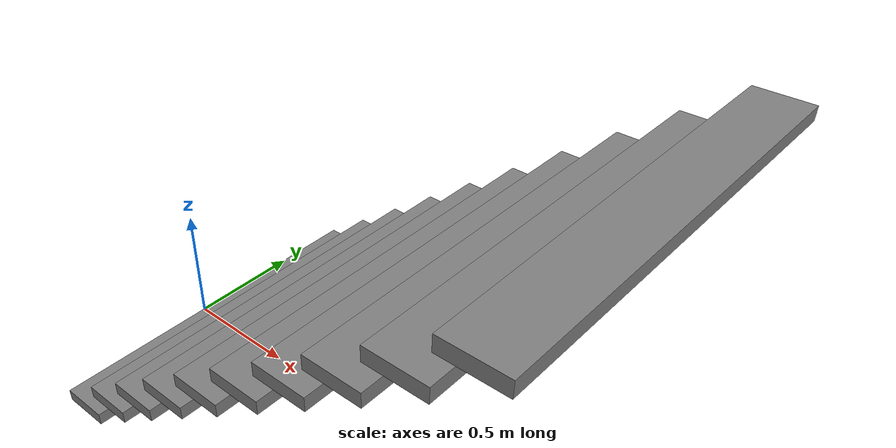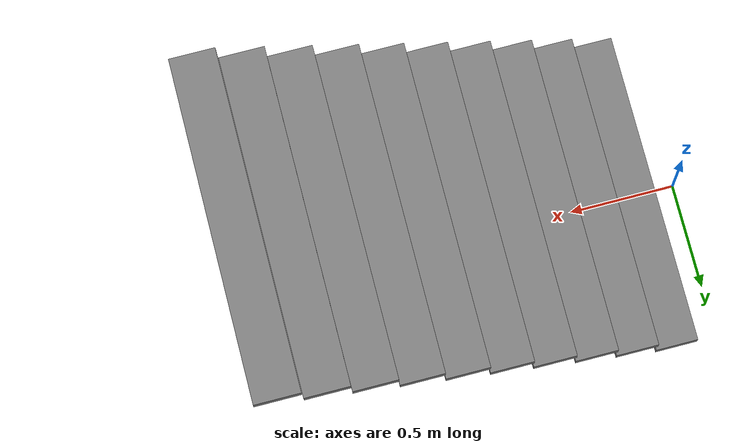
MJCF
<mujoco model="stairs_suspend">
  <worldbody>
    <body name="stairs_suspend" pos="0 0 0" euler="0 0 0">
      <geom pos="0.2 0.0 0.075" type="box" size="0.1 0.75 0.025" quat="1.0 0.0 0.0 0.0" contype="1" conaffinity="0"/>
      <geom pos="0.4 0.0 0.225" type="box" size="0.1 0.75 0.025" quat="1.0 0.0 0.0 0.0" contype="1" conaffinity="0"/>
      <geom pos="0.6 0.0 0.375" type="box" size="0.1 0.75 0.025" quat="1.0 0.0 0.0 0.0" contype="1" conaffinity="0"/>
      <geom pos="0.8 0.0 0.525" type="box" size="0.1 0.75 0.025" quat="1.0 0.0 0.0 0.0" contype="1" conaffinity="0"/>
      <geom pos="1.0 0.0 0.675" type="box" size="0.1 0.75 0.025" quat="1.0 0.0 0.0 0.0" contype="1" conaffinity="0"/>
      <geom pos="1.2 0.0 0.825" type="box" size="0.1 0.75 0.025" quat="1.0 0.0 0.0 0.0" contype="1" conaffinity="0"/>
      <geom pos="1.4 0.0 0.975" type="box" size="0.1 0.75 0.025" quat="1.0 0.0 0.0 0.0" contype="1" conaffinity="0"/>
      <geom pos="1.6 0.0 1.125" type="box" size="0.1 0.75 0.025" quat="1.0 0.0 0.0 0.0" contype="1" conaffinity="0"/>
      <geom pos="1.8 0.0 1.275" type="box" size="0.1 0.75 0.025" quat="1.0 0.0 0.0 0.0" contype="1" conaffinity="0"/>
      <geom pos="2.0 0.0 1.425" type="box" size="0.1 0.75 0.025" quat="1.0 0.0 0.0 0.0" contype="1" conaffinity="0"/>
    </body>
  </worldbody>
</mujoco>
